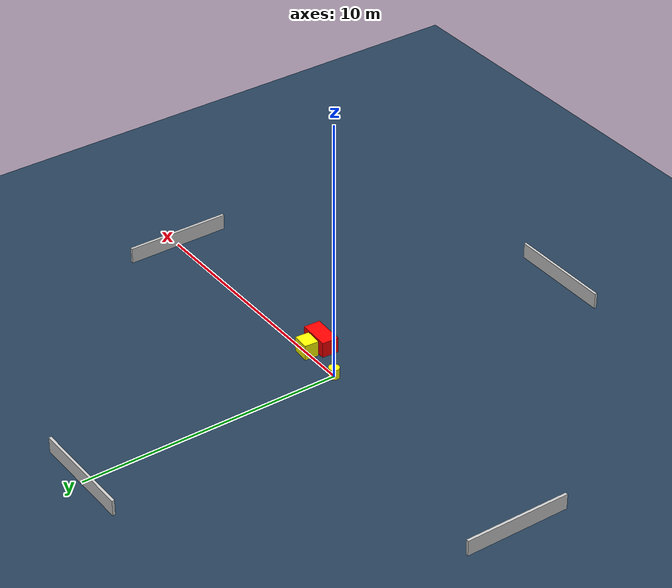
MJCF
<?xml version="1.0" ?>
<mujoco model="generated_environment">
  <option timestep="0.01" integrator="RK4" cone="elliptic"/>
  <default>
    <geom density="1"/>
  </default>
  <asset>
    <texture builtin="gradient" height="3072" name="skybox" rgb1="0.3 0.5 0.7" rgb2="0 0 0" type="skybox" width="512"/>
    <texture builtin="checker" height="300" name="groundplane" rgb1="0.2 0.3 0.4" rgb2="0.1 0.2 0.3" type="2d" width="300"/>
    <material name="groundplane" reflectance="0.2" texrepeat="5 5" texture="groundplane"/>
  </asset>
  <worldbody>
    <light dir="0 0 -1" directional="true" pos="0 0 1.5"/>
    <geom condim="3" friction="0.5 0.005 0.001" material="groundplane" name="floor" pos="0 0 0" size="0 0 0.05" type="plane"/>
    <body name="walls">
      <geom name="wall_1" condim="4" pos="-10.0 0.0 0.3" rgba="0.800000011920929 0.800000011920929 0.800000011920929 1.0" size="0.05 2.0 0.3" type="box"/>
      <geom name="wall_2" condim="4" pos="10.0 0.0 0.3" rgba="0.800000011920929 0.800000011920929 0.800000011920929 1.0" size="0.05 2.0 0.3" type="box"/>
      <geom name="wall_3" condim="4" pos="0.0 -10.0 0.3" rgba="0.800000011920929 0.800000011920929 0.800000011920929 1.0" size="2.0 0.05 0.3" type="box"/>
      <geom name="wall_4" condim="4" pos="0.0 10.0 0.3" rgba="0.800000011920929 0.800000011920929 0.800000011920929 1.0" size="2.0 0.05 0.3" type="box"/>
    </body>
    <body name="robot">
      <joint name="joint_x" type="slide" pos="0 0 0" axis="1 0 0"/>
      <joint name="joint_y" type="slide" pos="0 0 0" axis="0 1 0"/>
      <geom name="robot" type="cylinder" pos="0.0 0.0 0.2" size="0.2 0.2 0.0" mass="5.0" friction="1.0 0.005 0.0001" condim="4" rgba="1.0 1.0 0.0 1.0"/>
    </body>
    <body name="obstacle_1_movable">
      <geom name="obstacle_1_movable" condim="4" pos="1.6548730086720644 -0.016159379511799958 0.3" euler="0 0 176.22213481975663" friction="0.0 0.005 0.001" rgba="1.0 1.0 0.0 1.0" size="0.32638471692279936 0.26912052161300404 0.3" type="box" mass="0.1"/>
      <joint type="free"/>
    </body>
    <body name="obstacle_2_static">
      <geom name="obstacle_2_static" condim="4" pos="1.717698290580492 -0.6605494205135521 0.3" euler="0 0 177.58767869016478" friction="0.0 0.005 0.001" rgba="1.0 0.0 0.0 1.0" size="0.6032759566910528 0.3188947463966465 0.3" type="box"/>
    </body>
  </worldbody>
  <actuator>
    <motor name="actuator_x" joint="joint_x" gear="1" ctrlrange="-1 1"/>
    <motor name="actuator_y" joint="joint_y" gear="1" ctrlrange="-1 1"/>
  </actuator>
</mujoco>
